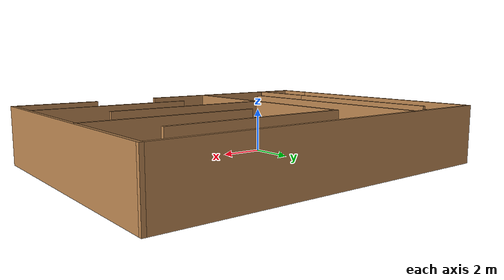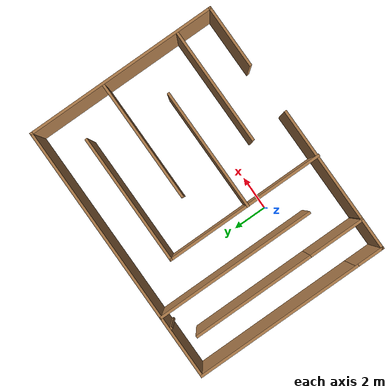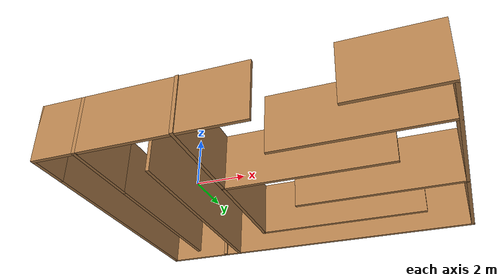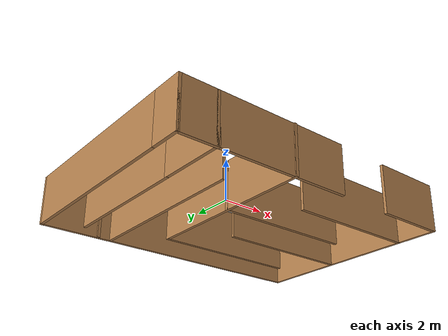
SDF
<?xml version='1.0'?>
<sdf version='1.7'>
  <model name='shinros_world.world'>
    <pose>2.60751 2.08369 0 0 -0 0</pose>
    <link name='Wall_10'>
      <collision name='Wall_10_Collision'>
        <geometry>
          <box>
            <size>3.75 0.15 2.5</size>
          </box>
        </geometry>
        <pose>0 0 1.25 0 -0 0</pose>
      </collision>
      <visual name='Wall_10_Visual'>
        <pose>0 0 1.25 0 -0 0</pose>
        <geometry>
          <box>
            <size>3.75 0.15 2.5</size>
          </box>
        </geometry>
        <material>
          <script>
            <uri>file://media/materials/scripts/gazebo.material</uri>
            <name>Gazebo/Wood</name>
          </script>
          <ambient>1 1 1 1</ambient>
        </material>
        <meta>
          <layer>0</layer>
        </meta>
      </visual>
      <pose>5.875 -5.60003 0 0 -0 0</pose>
    </link>
    <link name='Wall_11'>
      <collision name='Wall_11_Collision'>
        <geometry>
          <box>
            <size>11.5 0.15 2.5</size>
          </box>
        </geometry>
        <pose>0 0 1.25 0 -0 0</pose>
      </collision>
      <visual name='Wall_11_Visual'>
        <pose>0 0 1.25 0 -0 0</pose>
        <geometry>
          <box>
            <size>11.5 0.15 2.5</size>
          </box>
        </geometry>
        <material>
          <script>
            <uri>file://media/materials/scripts/gazebo.material</uri>
            <name>Gazebo/Wood</name>
          </script>
          <ambient>1 1 1 1</ambient>
        </material>
        <meta>
          <layer>0</layer>
        </meta>
      </visual>
      <pose>7.675 0.074974 0 0 -0 1.5708</pose>
    </link>
    <link name='Wall_12'>
      <collision name='Wall_12_Collision'>
        <geometry>
          <box>
            <size>15.5 0.15 2.5</size>
          </box>
        </geometry>
        <pose>0 0 1.25 0 -0 0</pose>
      </collision>
      <visual name='Wall_12_Visual'>
        <pose>0 0 1.25 0 -0 0</pose>
        <geometry>
          <box>
            <size>15.5 0.15 2.5</size>
          </box>
        </geometry>
        <material>
          <script>
            <uri>file://media/materials/scripts/gazebo.material</uri>
            <name>Gazebo/Wood</name>
          </script>
          <ambient>1 1 1 1</ambient>
        </material>
        <meta>
          <layer>0</layer>
        </meta>
      </visual>
      <pose>0 5.74997 0 0 -0 3.14159</pose>
    </link>
    <link name='Wall_13'>
      <collision name='Wall_13_Collision'>
        <geometry>
          <box>
            <size>10 0.15 2.5</size>
          </box>
        </geometry>
        <pose>0 0 1.25 0 -0 0</pose>
      </collision>
      <visual name='Wall_13_Visual'>
        <pose>0 0 1.25 0 -0 0</pose>
        <geometry>
          <box>
            <size>10 0.15 2.5</size>
          </box>
        </geometry>
        <material>
          <script>
            <uri>file://media/materials/scripts/gazebo.material</uri>
            <name>Gazebo/Wood</name>
          </script>
          <ambient>1 1 1 1</ambient>
        </material>
        <meta>
          <layer>0</layer>
        </meta>
      </visual>
      <pose>-7.675 0.824974 0 0 -0 -1.5708</pose>
    </link>
    <link name='Wall_14'>
      <collision name='Wall_14_Collision'>
        <geometry>
          <box>
            <size>1.75 0.15 2.5</size>
          </box>
        </geometry>
        <pose>0 0 1.25 0 -0 0</pose>
      </collision>
      <visual name='Wall_14_Visual'>
        <pose>0 0 1.25 0 -0 0</pose>
        <geometry>
          <box>
            <size>1.75 0.15 2.5</size>
          </box>
        </geometry>
        <material>
          <script>
            <uri>file://media/materials/scripts/gazebo.material</uri>
            <name>Gazebo/Wood</name>
          </script>
          <ambient>1 1 1 1</ambient>
        </material>
        <meta>
          <layer>0</layer>
        </meta>
      </visual>
      <pose>-7.675 -4.90003 0 0 -0 -1.5708</pose>
    </link>
    <link name='Wall_15'>
      <collision name='Wall_15_Collision'>
        <geometry>
          <box>
            <size>2 0.15 2.5</size>
          </box>
        </geometry>
        <pose>0 0 1.25 0 -0 0</pose>
      </collision>
      <visual name='Wall_15_Visual'>
        <pose>0 0 1.25 0 -0 0</pose>
        <geometry>
          <box>
            <size>2 0.15 2.5</size>
          </box>
        </geometry>
        <material>
          <script>
            <uri>file://media/materials/scripts/gazebo.material</uri>
            <name>Gazebo/Wood</name>
          </script>
          <ambient>1 1 1 1</ambient>
        </material>
        <meta>
          <layer>0</layer>
        </meta>
      </visual>
      <pose>-6.75 -5.70003 0 0 -0 0</pose>
    </link>
    <link name='Wall_18'>
      <collision name='Wall_18_Collision'>
        <geometry>
          <box>
            <size>0.15 0.15 2.5</size>
          </box>
        </geometry>
        <pose>0 0 1.25 0 -0 0</pose>
      </collision>
      <visual name='Wall_18_Visual'>
        <pose>0 0 1.25 0 -0 0</pose>
        <geometry>
          <box>
            <size>0.15 0.15 2.5</size>
          </box>
        </geometry>
        <material>
          <script>
            <uri>file://media/materials/scripts/gazebo.material</uri>
            <name>Gazebo/Wood</name>
          </script>
          <ambient>1 1 1 1</ambient>
        </material>
        <meta>
          <layer>0</layer>
        </meta>
      </visual>
      <pose>-4.7325 5.64646 0 0 -0 0</pose>
    </link>
    <link name='Wall_22'>
      <collision name='Wall_22_Collision'>
        <geometry>
          <box>
            <size>7.25 0.15 2.5</size>
          </box>
        </geometry>
        <pose>0 0 1.25 0 -0 0</pose>
      </collision>
      <visual name='Wall_22_Visual'>
        <pose>0 0 1.25 0 -0 0</pose>
        <geometry>
          <box>
            <size>7.25 0.15 2.5</size>
          </box>
        </geometry>
        <material>
          <script>
            <uri>file://media/materials/scripts/gazebo.material</uri>
            <name>Gazebo/Wood</name>
          </script>
          <ambient>1 1 1 1</ambient>
        </material>
        <meta>
          <layer>0</layer>
        </meta>
      </visual>
      <pose>-5.875 1.19997 0 0 -0 1.5708</pose>
    </link>
    <link name='Wall_24'>
      <collision name='Wall_24_Collision'>
        <geometry>
          <box>
            <size>9.5 0.15 2.5</size>
          </box>
        </geometry>
        <pose>0 0 1.25 0 -0 0</pose>
      </collision>
      <visual name='Wall_24_Visual'>
        <pose>0 0 1.25 0 -0 0</pose>
        <geometry>
          <box>
            <size>9.5 0.15 2.5</size>
          </box>
        </geometry>
        <material>
          <script>
            <uri>file://media/materials/scripts/gazebo.material</uri>
            <name>Gazebo/Wood</name>
          </script>
          <ambient>1 1 1 1</ambient>
        </material>
        <meta>
          <layer>0</layer>
        </meta>
      </visual>
      <pose>-3.99833 1.02861 0 0 -0 -1.5708</pose>
    </link>
    <link name='Wall_27'>
      <collision name='Wall_27_Collision'>
        <geometry>
          <box>
            <size>9.5 0.15 2.5</size>
          </box>
        </geometry>
        <pose>0 0 1.25 0 -0 0</pose>
      </collision>
      <visual name='Wall_27_Visual'>
        <pose>0 0 1.25 0 -0 0</pose>
        <geometry>
          <box>
            <size>9.5 0.15 2.5</size>
          </box>
        </geometry>
        <material>
          <script>
            <uri>file://media/materials/scripts/gazebo.material</uri>
            <name>Gazebo/Wood</name>
          </script>
          <ambient>1 1 1 1</ambient>
        </material>
        <meta>
          <layer>0</layer>
        </meta>
      </visual>
      <pose>-1.8449 -1.07498 0 0 -0 1.5708</pose>
    </link>
    <link name='Wall_30'>
      <collision name='Wall_30_Collision'>
        <geometry>
          <box>
            <size>7.75 0.15 2.5</size>
          </box>
        </geometry>
        <pose>0 0 1.25 0 -0 0</pose>
      </collision>
      <visual name='Wall_30_Visual'>
        <pose>0 0 1.25 0 -0 0</pose>
        <geometry>
          <box>
            <size>7.75 0.15 2.5</size>
          </box>
        </geometry>
        <material>
          <script>
            <uri>file://media/materials/scripts/gazebo.material</uri>
            <name>Gazebo/Wood</name>
          </script>
          <ambient>1 1 1 1</ambient>
        </material>
        <meta>
          <layer>0</layer>
        </meta>
      </visual>
      <pose>1.9551 3.60003 0 0 -0 0</pose>
    </link>
    <link name='Wall_32'>
      <collision name='Wall_32_Collision'>
        <geometry>
          <box>
            <size>7.25 0.15 2.5</size>
          </box>
        </geometry>
        <pose>0 0 1.25 0 -0 0</pose>
      </collision>
      <visual name='Wall_32_Visual'>
        <pose>0 0 1.25 0 -0 0</pose>
        <geometry>
          <box>
            <size>7.25 0.15 2.5</size>
          </box>
        </geometry>
        <material>
          <script>
            <uri>file://media/materials/scripts/gazebo.material</uri>
            <name>Gazebo/Wood</name>
          </script>
          <ambient>1 1 1 1</ambient>
        </material>
        <meta>
          <layer>0</layer>
        </meta>
      </visual>
      <pose>4.08865 1.23547 0 0 -0 3.14159</pose>
    </link>
    <link name='Wall_34'>
      <collision name='Wall_34_Collision'>
        <geometry>
          <box>
            <size>7.25 0.15 2.5</size>
          </box>
        </geometry>
        <pose>0 0 1.25 0 -0 0</pose>
      </collision>
      <visual name='Wall_34_Visual'>
        <pose>0 0 1.25 0 -0 0</pose>
        <geometry>
          <box>
            <size>7.25 0.15 2.5</size>
          </box>
        </geometry>
        <material>
          <script>
            <uri>file://media/materials/scripts/gazebo.material</uri>
            <name>Gazebo/Wood</name>
          </script>
          <ambient>1 1 1 1</ambient>
        </material>
        <meta>
          <layer>0</layer>
        </meta>
      </visual>
      <pose>1.6944 -1.26964 0 0 -0 0</pose>
    </link>
    <link name='Wall_36'>
      <collision name='Wall_36_Collision'>
        <geometry>
          <box>
            <size>7 0.15 2.5</size>
          </box>
        </geometry>
        <pose>0 0 1.25 0 -0 0</pose>
      </collision>
      <visual name='Wall_36_Visual'>
        <pose>0 0 1.25 0 -0 0</pose>
        <geometry>
          <box>
            <size>7 0.15 2.5</size>
          </box>
        </geometry>
        <material>
          <script>
            <uri>file://media/materials/scripts/gazebo.material</uri>
            <name>Gazebo/Wood</name>
          </script>
          <ambient>1 1 1 1</ambient>
        </material>
        <meta>
          <layer>0</layer>
        </meta>
      </visual>
      <pose>4.24139 -3.465 0 0 -0 3.14159</pose>
    </link>
    <link name='Wall_4'>
      <collision name='Wall_4_Collision'>
        <geometry>
          <box>
            <size>3.5 0.15 2.5</size>
          </box>
        </geometry>
        <pose>0 0 1.25 0 -0 0</pose>
      </collision>
      <visual name='Wall_4_Visual'>
        <pose>0 0 1.25 0 -0 0</pose>
        <geometry>
          <box>
            <size>3.5 0.15 2.5</size>
          </box>
        </geometry>
        <material>
          <script>
            <uri>file://media/materials/scripts/gazebo.material</uri>
            <name>Gazebo/Wood</name>
          </script>
          <ambient>1 1 1 1</ambient>
        </material>
        <meta>
          <layer>0</layer>
        </meta>
      </visual>
      <pose>-5.875 -4.02503 0 0 -0 -1.5708</pose>
    </link>
    <link name='Wall_5'>
      <collision name='Wall_5_Collision'>
        <geometry>
          <box>
            <size>7 0.15 2.5</size>
          </box>
        </geometry>
        <pose>0 0 1.25 0 -0 0</pose>
      </collision>
      <visual name='Wall_5_Visual'>
        <pose>0 0 1.25 0 -0 0</pose>
        <geometry>
          <box>
            <size>7 0.15 2.5</size>
          </box>
        </geometry>
        <material>
          <script>
            <uri>file://media/materials/scripts/gazebo.material</uri>
            <name>Gazebo/Wood</name>
          </script>
          <ambient>1 1 1 1</ambient>
        </material>
        <meta>
          <layer>0</layer>
        </meta>
      </visual>
      <pose>-2.45 -5.70003 0 0 -0 0</pose>
    </link>
    <static>1</static>
  </model>
</sdf>
